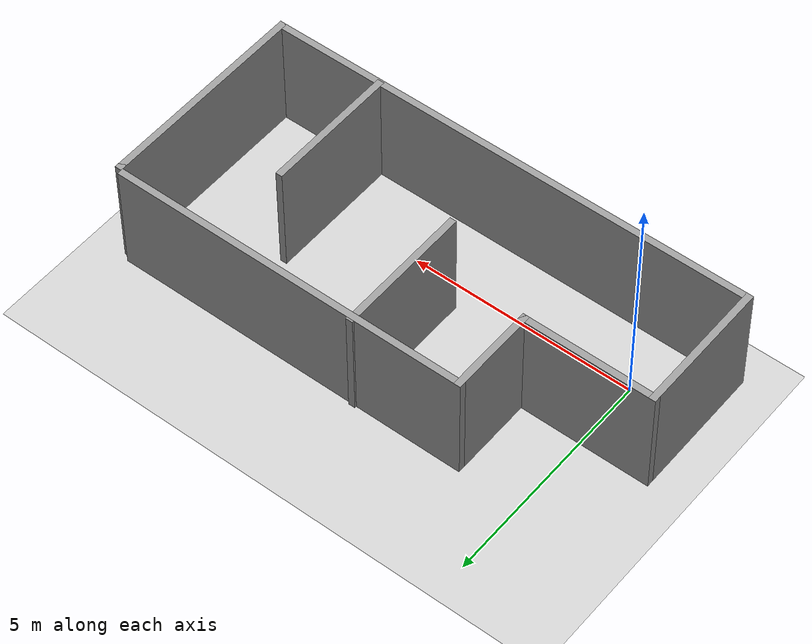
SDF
<sdf version="1.7">
 <world name="default">
  <light name="sun" type="directional">
   <pose>0 0 10 0 -0 0</pose>
   <diffuse>0.8 0.8 0.8 1</diffuse>
   <specular>0.2 0.2 0.2 1</specular>
   <attenuation>
    <range>1000</range>
    <constant>0.9</constant>
    <linear>0.01</linear>
    <quadratic>0.001</quadratic>
   </attenuation>
   <direction>-0.5 0.1 -0.9</direction>
   <spot><inner_angle>0</inner_angle><outer_angle>0</outer_angle><falloff>0</falloff></spot>
  </light>
  <model name="ground_plane">
   <static>1</static>
   <link name="link">
    <collision name="collision">
     <geometry><plane><normal>0 0 1</normal><size>100 100</size></plane></geometry>
     <surface>
      <contact><collide_bitmask>65535</collide_bitmask></contact>
      <friction><ode><mu>100</mu><mu2>50</mu2></ode></friction>
     </surface>
    </collision>
    <visual name="visual">
     <cast_shadows>0</cast_shadows>
     <geometry><plane><normal>0 0 1</normal><size>100 100</size></plane></geometry>
     <material>
      <script><uri>file://media/materials/scripts/gazebo.material</uri><name>Gazebo/Grey</name></script>
     </material>
    </visual>
   </link>
  </model>
  <gravity>0 0 -9.8</gravity>
  <magnetic_field>6e-06 2.3e-05 -4.2e-05</magnetic_field>
  <atmosphere type="adiabatic"/>
  <physics type="ode">
   <max_step_size>0.001</max_step_size>
   <real_time_factor>1</real_time_factor>
   <real_time_update_rate>1000</real_time_update_rate>
  </physics>
  <scene><ambient>0.4 0.4 0.4 1</ambient><background>0.7 0.7 0.7 1</background><shadows>1</shadows></scene>
  <spherical_coordinates>
   <surface_model>EARTH_WGS84</surface_model>
   <latitude_deg>0</latitude_deg>
   <longitude_deg>0</longitude_deg>
   <elevation>0</elevation>
   <heading_deg>0</heading_deg>
  </spherical_coordinates>
  <model name="room_0">
   <pose>3.97596 1.0011 0 0 -0 0</pose>
   <link name="Wall_1">
    <collision name="Wall_1_Collision">
     <geometry><box><size>8 0.15 2.5</size></box></geometry>
     <pose>0 0 1.25 0 -0 0</pose>
    </collision>
    <visual name="Wall_1_Visual">
     <pose>0 0 1.25 0 -0 0</pose>
     <geometry><box><size>8 0.15 2.5</size></box></geometry>
     <material>
      <script><uri>file://media/materials/scripts/gazebo.material</uri><name>Gazebo/Grey</name></script>
      <ambient>1 1 1 1</ambient>
     </material>
     <meta><layer>0</layer></meta>
    </visual>
    <pose>1.35 2.32884 0 0 -0 3.14159</pose>
   </link>
   <link name="Wall_11">
    <collision name="Wall_11_Collision">
     <geometry><box><size>3 0.15 2.5</size></box></geometry>
     <pose>0 0 1.25 0 -0 0</pose>
    </collision>
    <visual name="Wall_11_Visual">
     <pose>0 0 1.25 0 -0 0</pose>
     <geometry><box><size>3 0.15 2.5</size></box></geometry>
     <material>
      <script><uri>file://media/materials/scripts/gazebo.material</uri><name>Gazebo/Grey</name></script>
      <ambient>1 1 1 1</ambient>
     </material>
     <meta><layer>0</layer></meta>
    </visual>
    <pose>-0.185568 0.946157 0 0 -0 -1.5708</pose>
   </link>
   <link name="Wall_14">
    <collision name="Wall_14_Collision">
     <geometry><box><size>3 0.15 2.5</size></box></geometry>
     <pose>0 0 1.25 0 -0 0</pose>
    </collision>
    <visual name="Wall_14_Visual">
     <pose>0 0 1.25 0 -0 0</pose>
     <geometry><box><size>3 0.15 2.5</size></box></geometry>
     <material>
      <script><uri>file://media/materials/scripts/gazebo.material</uri><name>Gazebo/Grey</name></script>
      <ambient>1 1 1 1</ambient>
     </material>
     <meta><layer>0</layer></meta>
    </visual>
    <pose>3.00166 -0.911943 0 0 -0 1.5708</pose>
   </link>
   <link name="Wall_2">
    <collision name="Wall_2_Collision">
     <geometry><box><size>2 0.15 2.5</size></box></geometry>
     <pose>0 0 1.25 0 -0 0</pose>
    </collision>
    <visual name="Wall_2_Visual">
     <pose>0 0 1.25 0 -0 0</pose>
     <geometry><box><size>2 0.15 2.5</size></box></geometry>
     <material>
      <script><uri>file://media/materials/scripts/gazebo.material</uri><name>Gazebo/Grey</name></script>
      <ambient>1 1 1 1</ambient>
     </material>
     <meta><layer>0</layer></meta>
    </visual>
    <pose>-2.575 1.40384 0 0 -0 -1.5708</pose>
   </link>
   <link name="Wall_3">
    <collision name="Wall_3_Collision">
     <geometry><box><size>3 0.15 2.5</size></box></geometry>
     <pose>0 0 1.25 0 -0 0</pose>
    </collision>
    <visual name="Wall_3_Visual">
     <pose>0 0 1.25 0 -0 0</pose>
     <geometry><box><size>3 0.15 2.5</size></box></geometry>
     <material>
      <script><uri>file://media/materials/scripts/gazebo.material</uri><name>Gazebo/Grey</name></script>
      <ambient>1 1 1 1</ambient>
     </material>
     <meta><layer>0</layer></meta>
    </visual>
    <pose>-4 0.478843 0 0 -0 3.14159</pose>
   </link>
   <link name="Wall_4">
    <collision name="Wall_4_Collision">
     <geometry><box><size>3 0.15 2.5</size></box></geometry>
     <pose>0 0 1.25 0 -0 0</pose>
    </collision>
    <visual name="Wall_4_Visual">
     <pose>0 0 1.25 0 -0 0</pose>
     <geometry><box><size>3 0.15 2.5</size></box></geometry>
     <material>
      <script><uri>file://media/materials/scripts/gazebo.material</uri><name>Gazebo/Grey</name></script>
      <ambient>1 1 1 1</ambient>
     </material>
     <meta><layer>0</layer></meta>
    </visual>
    <pose>-5.425 -0.946157 0 0 -0 -1.5708</pose>
   </link>
   <link name="Wall_5">
    <collision name="Wall_5_Collision">
     <geometry><box><size>11 0.15 2.5</size></box></geometry>
     <pose>0 0 1.25 0 -0 0</pose>
    </collision>
    <visual name="Wall_5_Visual">
     <pose>0 0 1.25 0 -0 0</pose>
     <geometry><box><size>11 0.15 2.5</size></box></geometry>
     <material>
      <script><uri>file://media/materials/scripts/gazebo.material</uri><name>Gazebo/Grey</name></script>
      <ambient>1 1 1 1</ambient>
     </material>
     <meta><layer>0</layer></meta>
    </visual>
    <pose>-0 -2.37116 0 0 -0 0</pose>
   </link>
   <link name="Wall_6">
    <collision name="Wall_6_Collision">
     <geometry><box><size>4.75 0.15 2.5</size></box></geometry>
     <pose>0 0 1.25 0 -0 0</pose>
    </collision>
    <visual name="Wall_6_Visual">
     <pose>0 0 1.25 0 -0 0</pose>
     <geometry><box><size>4.75 0.15 2.5</size></box></geometry>
     <material>
      <script><uri>file://media/materials/scripts/gazebo.material</uri><name>Gazebo/Grey</name></script>
      <ambient>1 1 1 1</ambient>
     </material>
     <meta><layer>0</layer></meta>
    </visual>
    <pose>5.425 -0.071157 0 0 -0 1.5708</pose>
   </link>
   <link name="Wall_7">
    <collision name="Wall_7_Collision">
     <geometry><box><size>0.15 0.15 2.5</size></box></geometry>
     <pose>0 0 1.25 0 -0 0</pose>
    </collision>
    <visual name="Wall_7_Visual">
     <pose>0 0 1.25 0 -0 0</pose>
     <geometry><box><size>0.15 0.15 2.5</size></box></geometry>
     <material>
      <script><uri>file://media/materials/scripts/gazebo.material</uri><name>Gazebo/Grey</name></script>
      <ambient>1 1 1 1</ambient>
     </material>
     <meta><layer>0</layer></meta>
    </visual>
    <pose>5.425 2.22884 0 0 -0 0</pose>
   </link>
   <link name="Wall_8">
    <collision name="Wall_8_Collision">
     <geometry><box><size>0.15 0.15 2.5</size></box></geometry>
     <pose>0 0 1.25 0 -0 0</pose>
    </collision>
    <visual name="Wall_8_Visual">
     <pose>0 0 1.25 0 -0 0</pose>
     <geometry><box><size>0.15 0.15 2.5</size></box></geometry>
     <material>
      <script><uri>file://media/materials/scripts/gazebo.material</uri><name>Gazebo/Grey</name></script>
      <ambient>1 1 1 1</ambient>
     </material>
     <meta><layer>0</layer></meta>
    </visual>
    <pose>5.425 2.22884 0 0 -0 0</pose>
   </link>
   <static>1</static>
  </model>
  <model name="mycube">
   <link name="link">
    <inertial>
     <mass>0.0056</mass>
     <inertia><ixx>3.7e-07</ixx><ixy>0</ixy><ixz>0</ixz><iyy>3.7e-07</iyy><iyz>0</iyz><izz>3.7e-07</izz></inertia>
    </inertial>
    <visual name="visual">
     <geometry><box><size>0.02 0.02 0.02</size></box></geometry>
     <material>
      <script><name>Gazebo/White</name><uri>file://media/materials/scripts/gazebo.material</uri></script>
      <shader type="pixel"><normal_map>__default__</normal_map></shader>
      <ambient>1 1 1 1</ambient>
      <diffuse>1 1 1 1</diffuse>
      <specular>0.01 0.01 0.01 1</specular>
      <emissive>0 0 0 1</emissive>
     </material>
    </visual>
    <collision name="collision">
     <geometry><box><size>0.02 0.02 0.02</size></box></geometry>
     <surface>
      <friction>
       <ode><mu>1</mu><mu2>1</mu2><fdir1>0 0 0</fdir1><slip1>0</slip1><slip2>0</slip2></ode>
       <torsional>
        <coefficient>1</coefficient>
        <patch_radius>0</patch_radius>
        <surface_radius>0</surface_radius>
        <use_patch_radius>1</use_patch_radius>
        <ode><slip>0</slip></ode>
       </torsional>
      </friction>
      <bounce><restitution_coefficient>0</restitution_coefficient><threshold>1e+06</threshold></bounce>
      <contact>
       <collide_without_contact>0</collide_without_contact>
       <collide_without_contact_bitmask>1</collide_without_contact_bitmask>
       <collide_bitmask>1</collide_bitmask>
       <ode>
        <soft_cfm>0</soft_cfm>
        <soft_erp>0.2</soft_erp>
        <kp>1e+13</kp>
        <kd>1</kd>
        <max_vel>0.01</max_vel>
        <min_depth>0</min_depth>
       </ode>
       <bullet>
        <split_impulse>1</split_impulse>
        <split_impulse_penetration_threshold>-0.01</split_impulse_penetration_threshold>
        <soft_cfm>0</soft_cfm>
        <soft_erp>0.2</soft_erp>
        <kp>1e+13</kp>
        <kd>1</kd>
       </bullet>
      </contact>
     </surface>
    </collision>
   </link>
   <static>0</static>
   <pose>8.00141 -0.002044 0.009994 0.000166 0.000137 -0.00016</pose>
  </model>
 </world>
</sdf>
